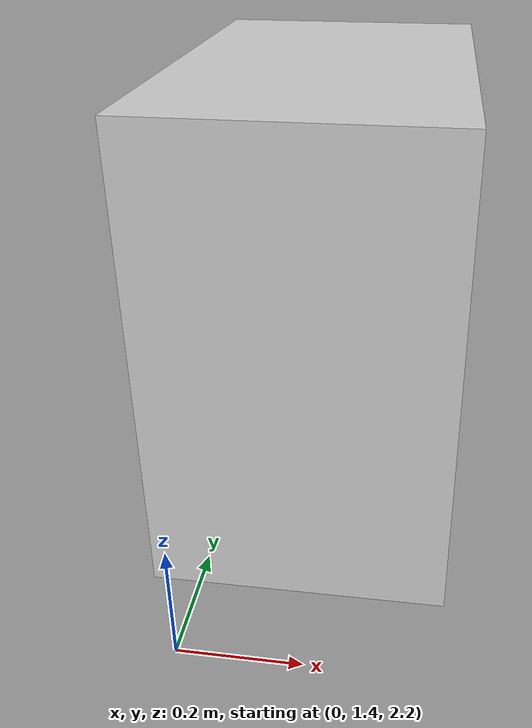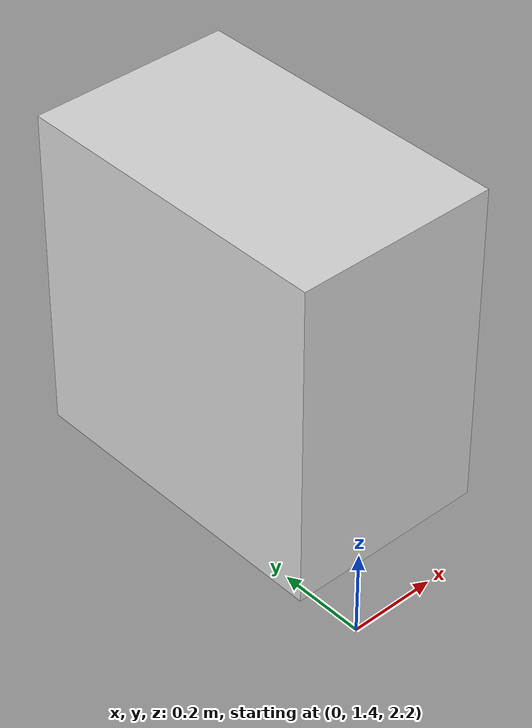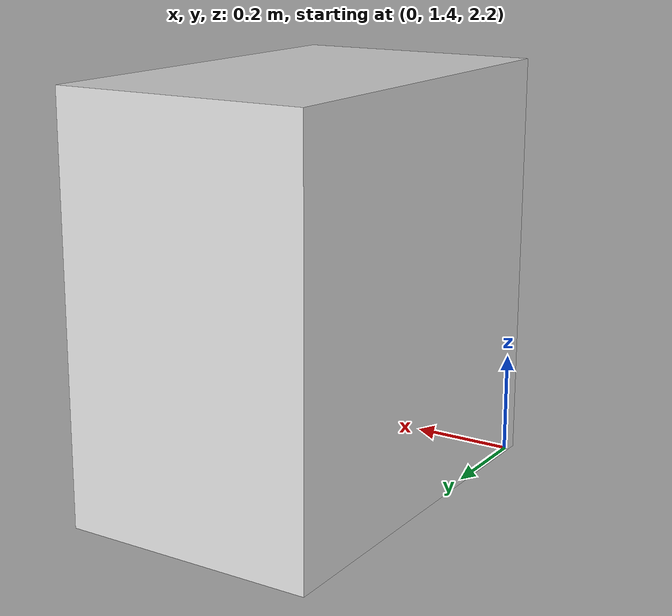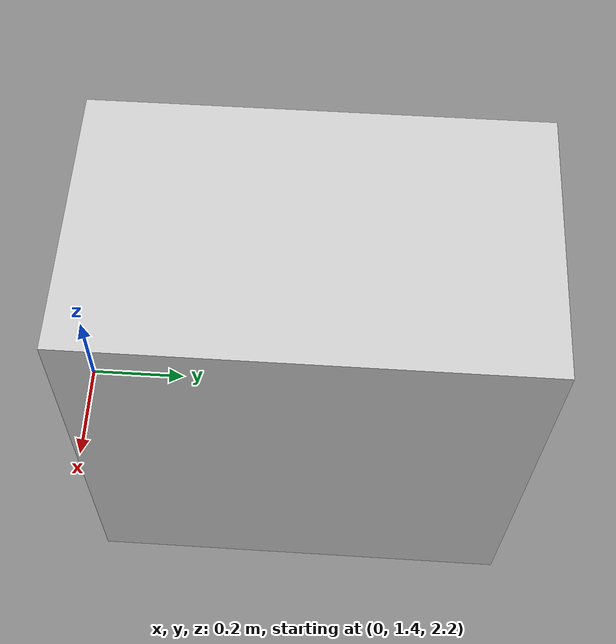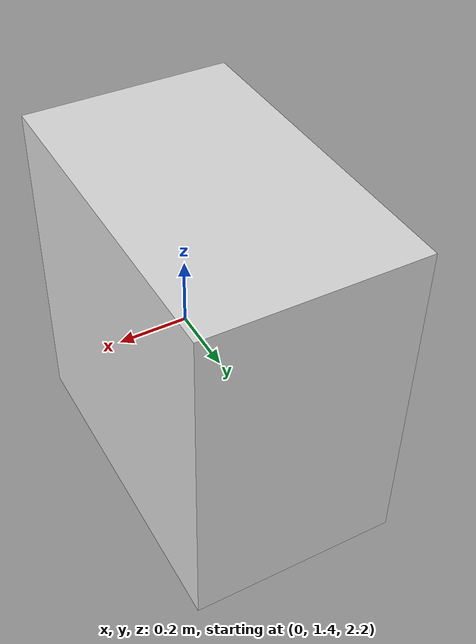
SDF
<?xml version="1.0" ?>
<!-- tmp sdf file generated from LISDF -->
<sdf version="1.9">
  <world name="tmp_world">

<model name="cabinettop_filler">
  <static>True</static>
  <pose>0.17399999499320984 1.8769999742507935 2.631999969482422 0.0 -0.0 0.0</pose>
  <link name="box">

    <inertial>
      <mass>0</mass>
      <pose>0.0 0.0 0.0 0.0 -0.0 0.0</pose>
      <inertia>
        <ixx>0</ixx>
        <ixy>0</ixy>
        <ixz>0</ixz>
        <iyy>0</iyy>
        <iyz>0</iyz>
        <izz>0</izz>
      </inertia>
    </inertial>
    <collision name="box_collision">>
      <pose>0.0 0.0 0.0 0.0 -0.0 0.0</pose>
      <geometry>
        <box>
          <size>0.47099998593330383 0.7620000243186951 0.7649999856948853</size>
        </box>
      </geometry>

    </collision>
    <visual name="box_visual">
      <pose>0.0 0.0 0.0 0.0 -0.0 0.0</pose>
      <geometry>
        <box>
          <size>0.47099998593330383 0.7620000243186951 0.7649999856948853</size>
        </box>
      </geometry>
      <material>
        <ambient>1.0 1.0 1.0 1.0</ambient>
        <diffuse>0.8500000238418579 0.8500000238418579 0.8500000238418579 1.0</diffuse>
        <specular>0.0 0.0 0.0 1.0</specular>
        <emissive>0.0 0.0 0.0 1.0</emissive>
      </material>
      <cast_shadows>True</cast_shadows>
    </visual>
    <self_collide>True</self_collide>
  </link>

</model>

  </world>
</sdf>
